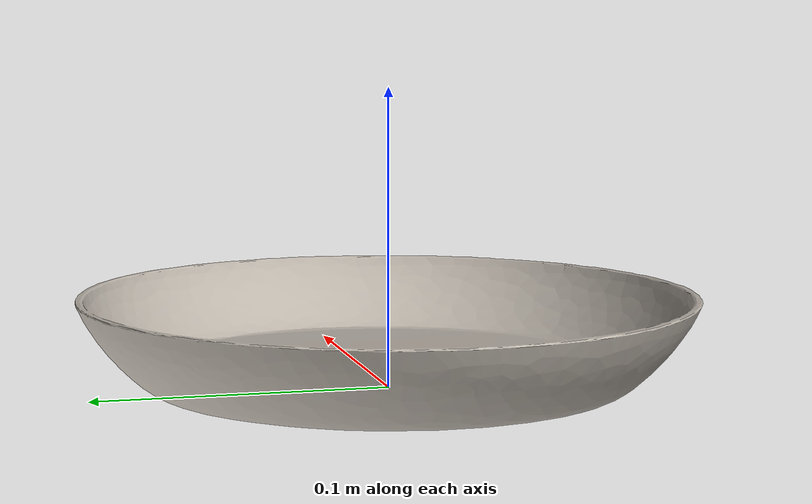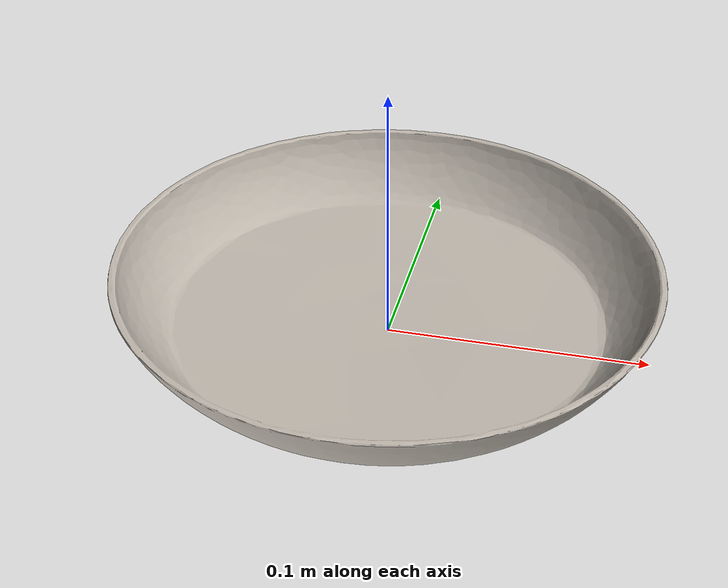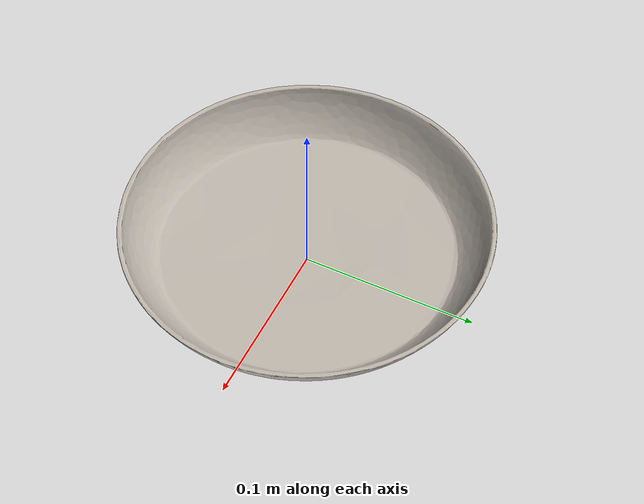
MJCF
<!-- OVERALL SIZE OF THIA PLATE IS X 0.21 Y 0.21 Z 0.03 -->

 <mujoco model="model">
  <asset>
    <texture type="2d" name="texture" file="plate_description/texture.png"/>
    <material name="material_0" texture="texture" specular="0.5" shininess="0.5"/>
    <mesh name="model" file="plate_description/model.obj"/>
    <mesh name="model_collision_0" file="plate_description/model_collision_0.obj"/>
    <mesh name="model_collision_1" file="plate_description/model_collision_1.obj"/>
    <mesh name="model_collision_2" file="plate_description/model_collision_2.obj"/>
    <mesh name="model_collision_3" file="plate_description/model_collision_3.obj"/>
    <mesh name="model_collision_4" file="plate_description/model_collision_4.obj"/>
    <mesh name="model_collision_5" file="plate_description/model_collision_5.obj"/>
    <mesh name="model_collision_6" file="plate_description/model_collision_6.obj"/>
    <mesh name="model_collision_7" file="plate_description/model_collision_7.obj"/>
    <mesh name="model_collision_8" file="plate_description/model_collision_8.obj"/>
    <mesh name="model_collision_9" file="plate_description/model_collision_9.obj"/>
    <mesh name="model_collision_10" file="plate_description/model_collision_10.obj"/>
    <mesh name="model_collision_11" file="plate_description/model_collision_11.obj"/>
    <mesh name="model_collision_12" file="plate_description/model_collision_12.obj"/>
    <mesh name="model_collision_13" file="plate_description/model_collision_13.obj"/>
    <mesh name="model_collision_14" file="plate_description/model_collision_14.obj"/>
    <mesh name="model_collision_15" file="plate_description/model_collision_15.obj"/>
    <mesh name="model_collision_16" file="plate_description/model_collision_16.obj"/>
    <mesh name="model_collision_17" file="plate_description/model_collision_17.obj"/>
    <mesh name="model_collision_18" file="plate_description/model_collision_18.obj"/>
    <mesh name="model_collision_19" file="plate_description/model_collision_19.obj"/>
    <mesh name="model_collision_20" file="plate_description/model_collision_20.obj"/>
    <mesh name="model_collision_21" file="plate_description/model_collision_21.obj"/>
    <mesh name="model_collision_22" file="plate_description/model_collision_22.obj"/>
    <mesh name="model_collision_23" file="plate_description/model_collision_23.obj"/>
    <mesh name="model_collision_24" file="plate_description/model_collision_24.obj"/>
    <mesh name="model_collision_25" file="plate_description/model_collision_25.obj"/>
    <mesh name="model_collision_26" file="plate_description/model_collision_26.obj"/>
    <mesh name="model_collision_27" file="plate_description/model_collision_27.obj"/>
    <mesh name="model_collision_28" file="plate_description/model_collision_28.obj"/>
    <mesh name="model_collision_29" file="plate_description/model_collision_29.obj"/>
    <mesh name="model_collision_30" file="plate_description/model_collision_30.obj"/>
    <mesh name="model_collision_31" file="plate_description/model_collision_31.obj"/>
  </asset>
  <worldbody>
    <body name="plate_body" >
    <joint name="plate" type="free"/>
      <geom material="material_0" mesh="model" type="mesh" contype="0" conaffinity="0" group="2"/>
      <geom mesh="model_collision_0" type="mesh" group="3"/>
      <geom mesh="model_collision_1" type="mesh" group="3"/>
      <geom mesh="model_collision_2" type="mesh" group="3"/>
      <geom mesh="model_collision_3" type="mesh" group="3"/>
      <geom mesh="model_collision_4" type="mesh" group="3"/>
      <geom mesh="model_collision_5" type="mesh" group="3"/>
      <geom mesh="model_collision_6" type="mesh" group="3"/>
      <geom mesh="model_collision_7" type="mesh" group="3"/>
      <geom mesh="model_collision_8" type="mesh" group="3"/>
      <geom mesh="model_collision_9" type="mesh" group="3"/>
      <geom mesh="model_collision_10" type="mesh" group="3"/>
      <geom mesh="model_collision_11" type="mesh" group="3"/>
      <geom mesh="model_collision_12" type="mesh" group="3"/>
      <geom mesh="model_collision_13" type="mesh" group="3"/>
      <geom mesh="model_collision_14" type="mesh" group="3"/>
      <geom mesh="model_collision_15" type="mesh" group="3"/>
      <geom mesh="model_collision_16" type="mesh" group="3"/>
      <geom mesh="model_collision_17" type="mesh" group="3"/>
      <geom mesh="model_collision_18" type="mesh" group="3"/>
      <geom mesh="model_collision_19" type="mesh" group="3"/>
      <geom mesh="model_collision_20" type="mesh" group="3"/>
      <geom mesh="model_collision_21" type="mesh" group="3"/>
      <geom mesh="model_collision_22" type="mesh" group="3"/>
      <geom mesh="model_collision_23" type="mesh" group="3"/>
      <geom mesh="model_collision_24" type="mesh" group="3"/>
      <geom mesh="model_collision_25" type="mesh" group="3"/>
      <geom mesh="model_collision_26" type="mesh" group="3"/>
      <geom mesh="model_collision_27" type="mesh" group="3"/>
      <geom mesh="model_collision_28" type="mesh" group="3"/>
      <geom mesh="model_collision_29" type="mesh" group="3"/>
      <geom mesh="model_collision_30" type="mesh" group="3"/>
      <geom mesh="model_collision_31" type="mesh" group="3"/>
    </body>
  </worldbody>
</mujoco>
